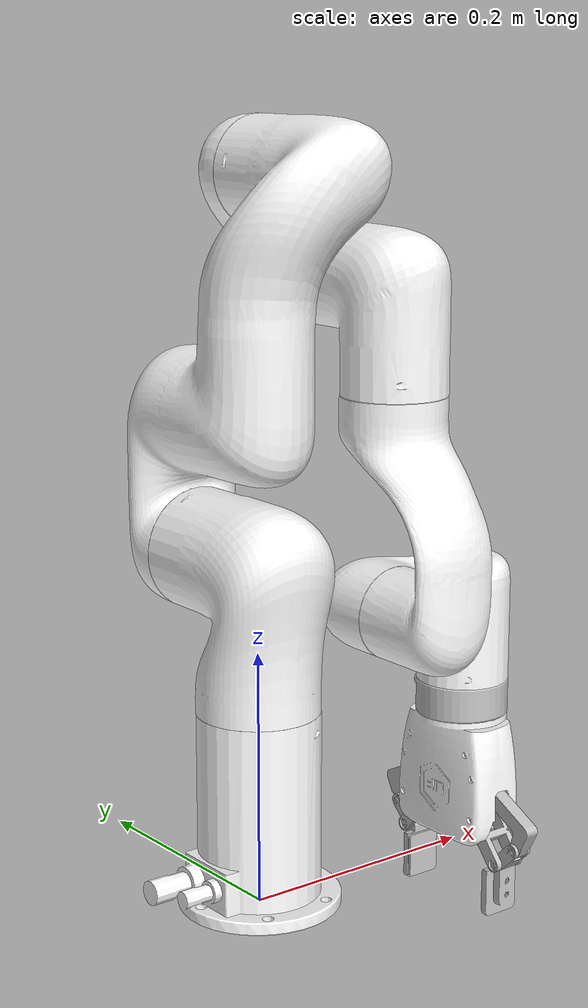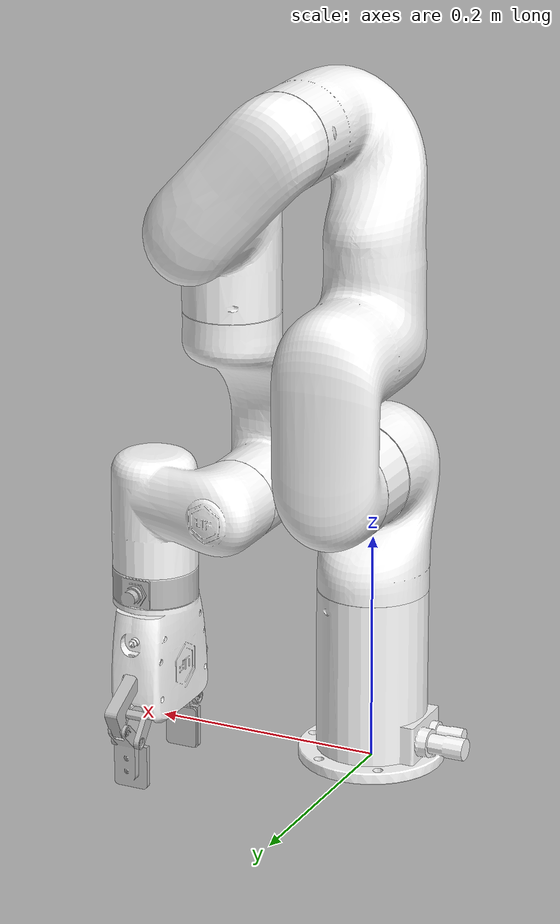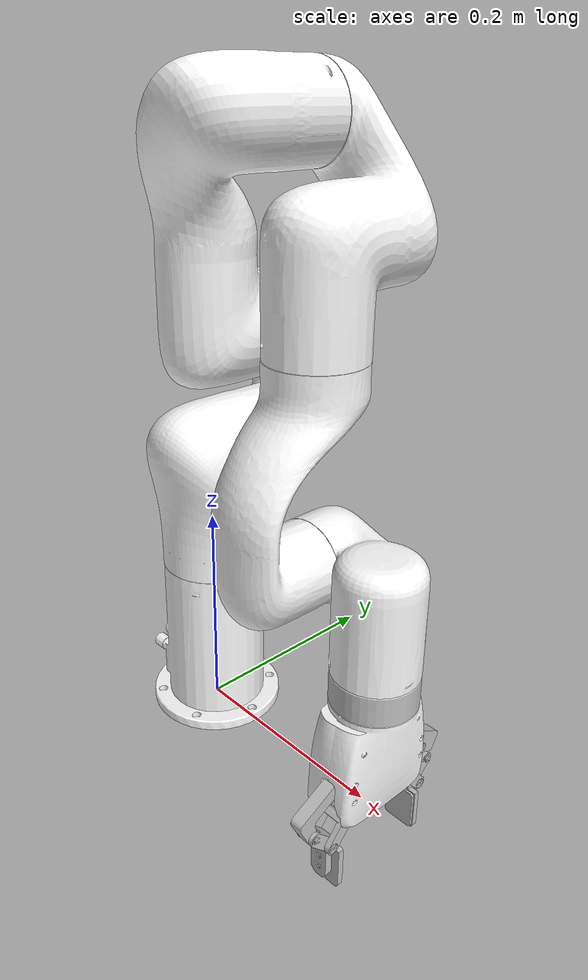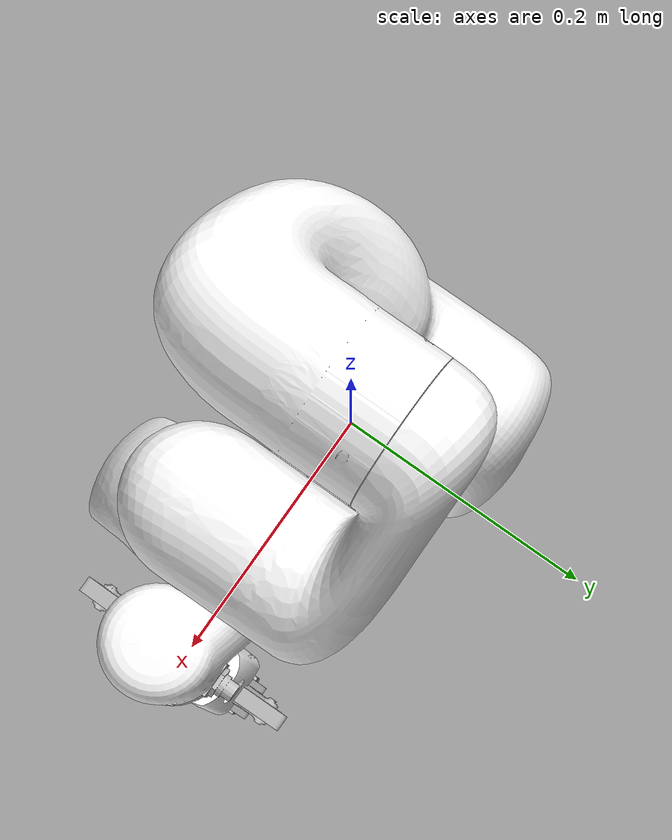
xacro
<?xml version="1.0"?>
<!-- |    This document was autogenerated by xacro from xarm6_with_gripper.xacro       | -->
<!-- |    EDITING THIS FILE BY HAND IS NOT RECOMMENDED                                 | -->
<robot name="xarm6_with_gripper" xmlns:xacro="http://ros.org/wiki/xacro">
  <link name="world"/>
  <joint name="world_joint" type="fixed">
    <parent link="world"/>
    <child link="link_base"/>
    <origin rpy="0 0 0" xyz="0 0 0"/>
  </joint>
  <material name="Black">
    <color rgba="0.0 0.0 0.0 1.0"/>
  </material>
  <material name="Red">
    <color rgba="0.8 0.0 0.0 1.0"/>
  </material>
  <material name="White">
    <color rgba="1.0 1.0 1.0 1.0"/>
  </material>
  <material name="Silver">
    <color rgba="0.753 0.753 0.753 1.0"/>
  </material>
  <link name="link_base">
    <visual>
      <geometry>
        <mesh filename="package://xarm_description/meshes/xarm6/visual/base.stl"/>
      </geometry>
      <origin rpy="0 0 0" xyz="0 0 0"/>
      <material name="White"/>
    </visual>
    <collision>
      <geometry>
        <mesh filename="package://xarm_description/meshes/xarm6/collision/base_vhacd.obj"/>
      </geometry>
      <origin rpy="0 0 0" xyz="0 0 0"/>
    </collision>
    <inertial>
      <origin rpy="0 0 0" xyz="0.0 0.0 0.09103"/>
      <mass value="2.7"/>
      <inertia ixx="0.00494875" ixy="-3.5E-06" ixz="1.25E-05" iyy="0.00494174" iyz="1.67E-06" izz="0.002219"/>
    </inertial>
  </link>
  <link name="link1">
    <visual>
      <geometry>
        <mesh filename="package://xarm_description/meshes/xarm6/visual/link1.stl"/>
      </geometry>
      <origin rpy="0 0 0" xyz="0 0 0"/>
      <material name="White"/>
    </visual>
    <collision>
      <geometry>
        <mesh filename="package://xarm_description/meshes/xarm6/collision/link1_vhacd.obj"/>
      </geometry>
      <origin rpy="0 0 0" xyz="0 0 0"/>
    </collision>
    <inertial>
      <origin rpy="0 0 0" xyz="-0.002 0.02692 -0.01332"/>
      <mass value="2.16"/>
      <inertia ixx="0.00539427" ixy="1.095E-05" ixz="1.635E-06" iyy="0.0048979" iyz="0.000793" izz="0.00311573"/>
    </inertial>
  </link>
  <joint name="joint1" type="revolute">
    <parent link="link_base"/>
    <child link="link1"/>
    <origin rpy="0 0 0" xyz="0 0 0.267"/>
    <axis xyz="0 0 1"/>
    <limit effort="50.0" lower="-6.28318530718" upper="6.28318530718" velocity="3.14"/>
    <dynamics damping="1.0" friction="1.0"/>
  </joint>
  <link name="link2">
    <visual>
      <geometry>
        <mesh filename="package://xarm_description/meshes/xarm6/visual/link2.stl"/>
      </geometry>
      <origin rpy="0 0 0" xyz="0 0 0"/>
      <material name="White"/>

    </visual>
    <collision>
      <geometry>
        <mesh filename="package://xarm_description/meshes/xarm6/collision/link2_vhacd2.obj"/>
      </geometry>
      <origin rpy="0 0 0" xyz="0 0 0"/>
    </collision>
    <inertial>
      <origin rpy="0 0 0" xyz="0.03531 -0.21398 0.03386"/>
      <mass value="1.71"/>
      <inertia ixx="0.0248674" ixy="0" ixz="0" iyy="0.00485548" iyz="0" izz="0.02387827"/>
    </inertial>
  </link>
  <joint name="joint2" type="revolute">
    <parent link="link1"/>
    <child link="link2"/>
    <origin rpy="-1.5708 0 0" xyz="0 0 0"/>
    <axis xyz="0 0 1"/>
    <limit effort="50.0" lower="-2.059" upper="2.0944" velocity="3.14"/>
    <dynamics damping="1.0" friction="1.0"/>
  </joint>
  <link name="link3">
    <visual>
      <geometry>
        <mesh filename="package://xarm_description/meshes/xarm6/visual/link3.stl"/>
      </geometry>
      <origin rpy="0 0 0" xyz="0 0 0"/>
      <material name="White"/>
    </visual>
    <collision>
      <geometry>
        <mesh filename="package://xarm_description/meshes/xarm6/collision/link3_vhacd.obj"/>
      </geometry>
      <origin rpy="0 0 0" xyz="0 0 0"/>
    </collision>
    <inertial>
      <origin rpy="0 0 0" xyz="0.06781 0.10749 0.01457"/>
      <mass value="1.384"/>
      <inertia ixx="0.0053694" ixy="0" ixz="0" iyy="0.0032423" iyz="0" izz="0.00501731"/>
    </inertial>
  </link>
  <joint name="joint3" type="revolute">
    <parent link="link2"/>
    <child link="link3"/>
    <origin rpy="0 0 0" xyz="0.0535 -0.2845 0"/>
    <axis xyz="0 0 1"/>
    <limit effort="32.0" lower="-3.927" upper="0.19198" velocity="3.14"/>
    <dynamics damping="1.0" friction="1.0"/>
  </joint>
  <link name="link4">
    <visual>
      <geometry>
        <mesh filename="package://xarm_description/meshes/xarm6/visual/link4.stl"/>
      </geometry>
      <origin rpy="0 0 0" xyz="0 0 0"/>
      <material name="White"/>
    </visual>
    <collision>
      <geometry>
        <mesh filename="package://xarm_description/meshes/xarm6/collision/link4_vhacd.obj"/>
      </geometry>
      <origin rpy="0 0 0" xyz="0 0 0"/>
    </collision>
    <inertial>
      <origin rpy="0 0 0" xyz="-0.00021 0.02578 -0.02538"/>
      <mass value="1.115"/>
      <inertia ixx="0.00439263" ixy="5.028E-05" ixz="1.374E-05" iyy="0.0040077" iyz="0.00045338" izz="0.00110321"/>
    </inertial>
  </link>
  <joint name="joint4" type="revolute">
    <parent link="link3"/>
    <child link="link4"/>
    <origin rpy="-1.5708 0 0" xyz="0.0775 0.3425 0"/>
    <axis xyz="0 0 1"/>
    <limit effort="32.0" lower="-6.28318530718" upper="6.28318530718" velocity="3.14"/>
    <dynamics damping="1.0" friction="1.0"/>
  </joint>
  <link name="link5">
    <visual>
      <geometry>
        <mesh filename="package://xarm_description/meshes/xarm6/visual/link5.stl"/>
      </geometry>
      <origin rpy="0 0 0" xyz="0 0 0"/>
      <material name="White"/>
    </visual>
    <collision>
      <geometry>
        <mesh filename="package://xarm_description/meshes/xarm6/collision/link5_vhacd.obj"/>
      </geometry>
      <origin rpy="0 0 0" xyz="0 0 0"/>
    </collision>
    <inertial>
      <origin rpy="0 0 0" xyz="0.05428 0.01781 0.00543"/>
      <mass value="1.275"/>
      <inertia ixx="0.001202758" ixy="0.000492428" ixz="-0.00039147" iyy="0.0022876" iyz="-1.235E-04" izz="0.0026866"/>
    </inertial>
  </link>
  <joint name="joint5" type="revolute">
    <parent link="link4"/>
    <child link="link5"/>
    <origin rpy="1.5708 0 0" xyz="0 0 0"/>
    <axis xyz="0 0 1"/>
    <limit effort="32.0" lower="-1.69297" upper="3.14159265359" velocity="3.14"/>
    <dynamics damping="1.0" friction="1.0"/>
  </joint>
  <link name="link6">
    <visual>
      <geometry>
        <mesh filename="package://xarm_description/meshes/xarm6/visual/link6.stl"/>
      </geometry>
      <origin rpy="0 0 0" xyz="0 0 0"/>
      <material name="Silver"/>
    </visual>
    <collision>
      <geometry>
        <mesh filename="package://xarm_description/meshes/xarm6/visual/link6.stl"/>
      </geometry>
      <origin rpy="0 0 0" xyz="0 0 0"/>
    </collision>
    <inertial>
      <origin rpy="0 0 0" xyz="0 0.00064 -0.00952"/>
      <mass value="0.1096"/>
      <inertia ixx="4.5293E-05" ixy="0" ixz="0" iyy="4.8111E-05" iyz="0" izz="7.9715E-05"/>
    </inertial>
  </link>
  <joint name="joint6" type="revolute">
    <parent link="link5"/>
    <child link="link6"/>
    <origin rpy="-1.5708 0 0" xyz="0.076 0.097 0"/>
    <axis xyz="0 0 1"/>
    <limit effort="20.0" lower="-6.28318530718" upper="6.28318530718" velocity="3.14"/>
    <dynamics damping="1.0" friction="1.0"/>
  </joint>
  <transmission name="tran1">
    <type>transmission_interface/SimpleTransmission</type>
    <joint name="joint1">
      <hardwareInterface>hardware_interface/PositionJointInterface</hardwareInterface>
    </joint>
    <actuator name="motor1">
      <hardwareInterface>hardware_interface/PositionJointInterface</hardwareInterface>
      <mechanicalReduction>100</mechanicalReduction>
    </actuator>
  </transmission>
  <transmission name="tran2">
    <type>transmission_interface/SimpleTransmission</type>
    <joint name="joint2">
      <hardwareInterface>hardware_interface/PositionJointInterface</hardwareInterface>
    </joint>
    <actuator name="motor2">
      <hardwareInterface>hardware_interface/PositionJointInterface</hardwareInterface>
      <mechanicalReduction>reduction</mechanicalReduction>
    </actuator>
  </transmission>
  <transmission name="tran3">
    <type>transmission_interface/SimpleTransmission</type>
    <joint name="joint3">
      <hardwareInterface>hardware_interface/PositionJointInterface</hardwareInterface>
    </joint>
    <actuator name="motor3">
      <hardwareInterface>hardware_interface/PositionJointInterface</hardwareInterface>
      <mechanicalReduction>reduction</mechanicalReduction>
    </actuator>
  </transmission>
  <transmission name="tran4">
    <type>transmission_interface/SimpleTransmission</type>
    <joint name="joint4">
      <hardwareInterface>hardware_interface/PositionJointInterface</hardwareInterface>
    </joint>
    <actuator name="motor3">
      <hardwareInterface>hardware_interface/PositionJointInterface</hardwareInterface>
      <mechanicalReduction>reduction</mechanicalReduction>
    </actuator>
  </transmission>
  <transmission name="tran5">
    <type>transmission_interface/SimpleTransmission</type>
    <joint name="joint5">
      <hardwareInterface>hardware_interface/PositionJointInterface</hardwareInterface>
    </joint>
    <actuator name="motor5">
      <hardwareInterface>hardware_interface/PositionJointInterface</hardwareInterface>
      <mechanicalReduction>reduction</mechanicalReduction>
    </actuator>
  </transmission>
  <transmission name="tran6">
    <type>transmission_interface/SimpleTransmission</type>
    <joint name="joint6">
      <hardwareInterface>hardware_interface/PositionJointInterface</hardwareInterface>
    </joint>
    <actuator name="motor6">
      <hardwareInterface>hardware_interface/PositionJointInterface</hardwareInterface>
      <mechanicalReduction>reduction</mechanicalReduction>
    </actuator>
  </transmission>
  <gazebo reference="link_base">
    <selfCollide>true</selfCollide>
  </gazebo>
  <gazebo reference="link1">
    <selfCollide>true</selfCollide>
  </gazebo>
  <gazebo reference="link2">
    <selfCollide>true</selfCollide>
  </gazebo>
  <gazebo reference="link3">
    <selfCollide>true</selfCollide>
  </gazebo>
  <gazebo reference="link4">
    <selfCollide>true</selfCollide>
  </gazebo>
  <gazebo reference="link5">
    <selfCollide>true</selfCollide>
  </gazebo>
  <gazebo reference="link6">
    <selfCollide>true</selfCollide>
  </gazebo>
  <!-- gazebo plugin -->
  <joint name="gripper_fix" type="fixed">
    <parent link="link6"/>
    <child link="xarm_gripper_base_link"/>
    <origin rpy="0 0 0" xyz="0 0 0"/>
  </joint>
  <link name="xarm_gripper_base_link">
    <inertial>
      <origin rpy="0 0 0" xyz="-0.00065489 -0.0018497 0.048028"/>
      <mass value="0.54156"/>
      <inertia ixx="0.00047106" ixy="3.9292E-07" ixz="2.6537E-06" iyy="0.00033072" iyz="-1.0975E-05" izz="0.00025642"/>
    </inertial>
    <visual>
      <origin rpy="0 0 0" xyz="0 0 0"/>
      <geometry>
        <mesh filename="package://xarm_gripper/meshes/base_link.STL"/>
      </geometry>
      <material name="White">
        <color rgba="1.0 1.0 1.0 1.0"/>
      </material>
    </visual>
    <collision>
      <origin rpy="0 0 0" xyz="0 0 0"/>
      <geometry>
        <mesh filename="package://xarm_gripper/meshes/base_link.STL"/>
      </geometry>
    </collision>
  </link>
  <link name="left_outer_knuckle">
    <inertial>
      <origin rpy="0 0 0" xyz="2.9948E-14 0.021559 0.015181"/>
      <mass value="0.033618"/>
      <inertia ixx="1.9111E-05" ixy="-1.8803E-17" ixz="-1.1002E-17" iyy="6.6256E-06" iyz="-7.3008E-06" izz="1.3185E-05"/>
    </inertial>
    <visual>
      <origin rpy="0 0 0" xyz="0 0 0"/>
      <geometry>
        <mesh filename="package://xarm_gripper/meshes/left_outer_knuckle.STL"/>
      </geometry>
      <material name="Silver">
        <color rgba="0.753 0.753 0.753 1.0"/>
      </material>
    </visual>
    <collision>
      <origin rpy="0 0 0" xyz="0 0 0"/>
      <geometry>
        <mesh filename="package://xarm_gripper/meshes/left_outer_knuckle.STL"/>
      </geometry>
    </collision>
  </link>
  <joint name="drive_joint" type="revolute">
    <origin rpy="0 0 0" xyz="0 0.035 0.059098"/>
    <parent link="xarm_gripper_base_link"/>
    <child link="left_outer_knuckle"/>
    <axis xyz="1 0 0"/>
    <limit effort="50" lower="0" upper="0.85" velocity="2"/>
  </joint>
  <link name="left_finger">
    <inertial>
      <origin rpy="0 0 0" xyz="-2.4536E-14 -0.016413 0.029258"/>
      <mass value="0.048304"/>
      <inertia ixx="1.7493E-05" ixy="-4.2156E-19" ixz="6.9164E-18" iyy="1.7225E-05" iyz="4.6433E-06" izz="5.1466E-06"/>
    </inertial>
    <visual>
      <origin rpy="0 0 0" xyz="0 0 0"/>
      <geometry>
        <mesh filename="package://xarm_gripper/meshes/left_finger.STL"/>
      </geometry>
      <material name="Silver">
        <color rgba="0.753 0.753 0.753 1.0"/>
      </material>
    </visual>
    <collision>
      <origin rpy="0 0 0" xyz="0 0 0"/>
      <geometry>
        <mesh filename="package://xarm_gripper/meshes/left_finger.STL"/>
      </geometry>
    </collision>
  </link>
  <joint name="left_finger_joint" type="revolute">
    <origin rpy="0 0 0" xyz="0 0.035465 0.042039"/>
    <parent link="left_outer_knuckle"/>
    <child link="left_finger"/>
    <axis xyz="-1 0 0"/>
    <limit effort="50" lower="0" upper="0.85" velocity="2"/>
    <mimic joint="drive_joint" multiplier="1" offset="0"/>
  </joint>
  <link name="left_inner_knuckle">
    <inertial>
      <origin rpy="0 0 0" xyz="1.86600784687907E-06 0.0220467847633621 0.0261334672830885"/>
      <mass value="0.0230125781256706"/>
      <inertia ixx="6.09490024271906E-06" ixy="6.06651326160071E-11" ixz="7.19102670500635E-11" iyy="6.01955084375188E-06" iyz="-2.75316812991721E-06" izz="5.07862004479903E-06"/>
    </inertial>
    <visual>
      <origin rpy="0 0 0" xyz="0 0 0"/>
      <geometry>
        <mesh filename="package://xarm_gripper/meshes/left_inner_knuckle.STL"/>
      </geometry>
      <material name="Silver">
        <color rgba="0.753 0.753 0.753 1.0"/>
      </material>
    </visual>
    <collision>
      <origin rpy="0 0 0" xyz="0 0 0"/>
      <geometry>
        <mesh filename="package://xarm_gripper/meshes/left_inner_knuckle.STL"/>
      </geometry>
    </collision>
  </link>
  <joint name="left_inner_knuckle_joint" type="revolute">
    <origin rpy="0 0 0" xyz="0 0.02 0.074098"/>
    <parent link="xarm_gripper_base_link"/>
    <child link="left_inner_knuckle"/>
    <axis xyz="1 0 0"/>
    <limit effort="50" lower="0" upper="0.85" velocity="2"/>
    <mimic joint="drive_joint" multiplier="1" offset="0"/>
  </joint>
  <link name="right_outer_knuckle">
    <inertial>
      <origin rpy="0 0 0" xyz="-3.1669E-14 -0.021559 0.015181"/>
      <mass value="0.033618"/>
      <inertia ixx="1.9111E-05" ixy="-1.8789E-17" ixz="1.0986E-17" iyy="6.6256E-06" iyz="7.3008E-06" izz="1.3185E-05"/>
    </inertial>
    <visual>
      <origin rpy="0 0 0" xyz="0 0 0"/>
      <geometry>
        <mesh filename="package://xarm_gripper/meshes/right_outer_knuckle.STL"/>
      </geometry>
      <material name="Silver">
        <color rgba="0.753 0.753 0.753 1.0"/>
      </material>
    </visual>
    <collision>
      <origin rpy="0 0 0" xyz="0 0 0"/>
      <geometry>
        <mesh filename="package://xarm_gripper/meshes/right_outer_knuckle.STL"/>
      </geometry>
    </collision>
  </link>
  <joint name="right_outer_knuckle_joint" type="revolute">
    <origin rpy="0 0 0" xyz="0 -0.035 0.059098"/>
    <parent link="xarm_gripper_base_link"/>
    <child link="right_outer_knuckle"/>
    <axis xyz="-1 0 0"/>
    <limit effort="50" lower="0" upper="0.85" velocity="2"/>
    <mimic joint="drive_joint" multiplier="1" offset="0"/>
  </joint>
  <link name="right_finger">
    <inertial>
      <origin rpy="0 0 0" xyz="2.5618E-14 0.016413 0.029258"/>
      <mass value="0.048304"/>
      <inertia ixx="1.7493E-05" ixy="-5.0014E-19" ixz="-7.5079E-18" iyy="1.7225E-05" iyz="-4.6435E-06" izz="5.1466E-06"/>
    </inertial>
    <visual>
      <origin rpy="0 0 0" xyz="0 0 0"/>
      <geometry>
        <mesh filename="package://xarm_gripper/meshes/right_finger.STL"/>
      </geometry>
      <material name="Silver">
        <color rgba="0.753 0.753 0.753 1.0"/>
      </material>
    </visual>
    <collision>
      <origin rpy="0 0 0" xyz="0 0 0"/>
      <geometry>
        <mesh filename="package://xarm_gripper/meshes/right_finger.STL"/>
      </geometry>
    </collision>
  </link>
  <joint name="right_finger_joint" type="revolute">
    <origin rpy="0 0 0" xyz="0 -0.035465 0.042039"/>
    <parent link="right_outer_knuckle"/>
    <child link="right_finger"/>
    <axis xyz="1 0 0"/>
    <limit effort="50" lower="0" upper="0.85" velocity="2"/>
    <mimic joint="drive_joint" multiplier="1" offset="0"/>
  </joint>
  <link name="right_inner_knuckle">
    <inertial>
      <origin rpy="0 0 0" xyz="1.866E-06 -0.022047 0.026133"/>
      <mass value="0.023013"/>
      <inertia ixx="6.0949E-06" ixy="-6.0665E-11" ixz="7.191E-11" iyy="6.0197E-06" iyz="2.7531E-06" izz="5.0784E-06"/>
    </inertial>
    <visual>
      <origin rpy="0 0 0" xyz="0 0 0"/>
      <geometry>
        <mesh filename="package://xarm_gripper/meshes/right_inner_knuckle.STL"/>
      </geometry>
      <material name="Silver">
        <color rgba="0.753 0.753 0.753 1.0"/>
      </material>
    </visual>
    <collision>
      <origin rpy="0 0 0" xyz="0 0 0"/>
      <geometry>
        <mesh filename="package://xarm_gripper/meshes/right_inner_knuckle.STL"/>
      </geometry>
    </collision>
  </link>
  <joint name="right_inner_knuckle_joint" type="revolute">
    <origin rpy="0 0 0" xyz="0 -0.02 0.074098"/>
    <parent link="xarm_gripper_base_link"/>
    <child link="right_inner_knuckle"/>
    <axis xyz="-1 0 0"/>
    <limit effort="50" lower="0" upper="0.85" velocity="2"/>
    <mimic joint="drive_joint" multiplier="1" offset="0"/>
  </joint>
  <transmission name="drive_joint_trans">
    <type>transmission_interface/SimpleTransmission</type>
    <joint name="drive_joint">
      <hardwareInterface>hardware_interface/PositionJointInterface</hardwareInterface>
    </joint>
    <actuator name="drive_joint_motor">
      <hardwareInterface>hardware_interface/PositionJointInterface</hardwareInterface>
      <mechanicalReduction>1</mechanicalReduction>
    </actuator>
  </transmission>
  <gazebo reference="xarm_gripper_base_link">
    <selfCollide>true</selfCollide>
  </gazebo>
  <gazebo reference="left_outer_knuckle">
    <selfCollide>true</selfCollide>
  </gazebo>
  <gazebo reference="left_finger">
    <selfCollide>true</selfCollide>
  </gazebo>
  <gazebo reference="left_inner_knuckle">
    <selfCollide>true</selfCollide>
  </gazebo>
  <gazebo reference="right_outer_knuckle">
    <selfCollide>true</selfCollide>
  </gazebo>
  <gazebo reference="right_finger">
    <selfCollide>true</selfCollide>
  </gazebo>
  <gazebo reference="right_inner_knuckle">
    <selfCollide>true</selfCollide>
  </gazebo>

  <gazebo>
    <static>true</static>
  </gazebo>

</robot>
